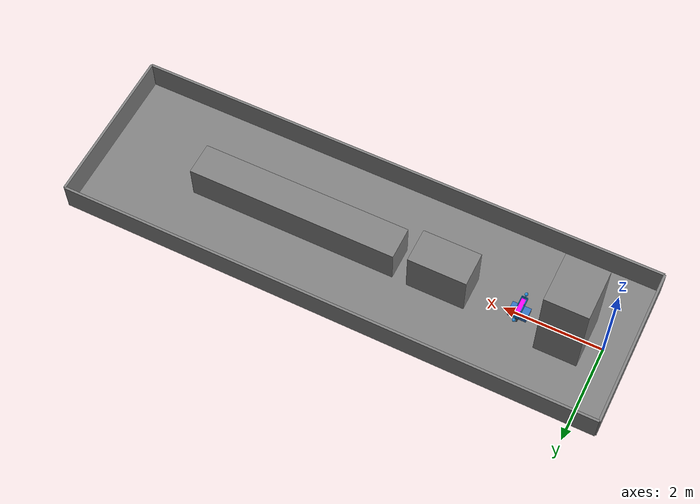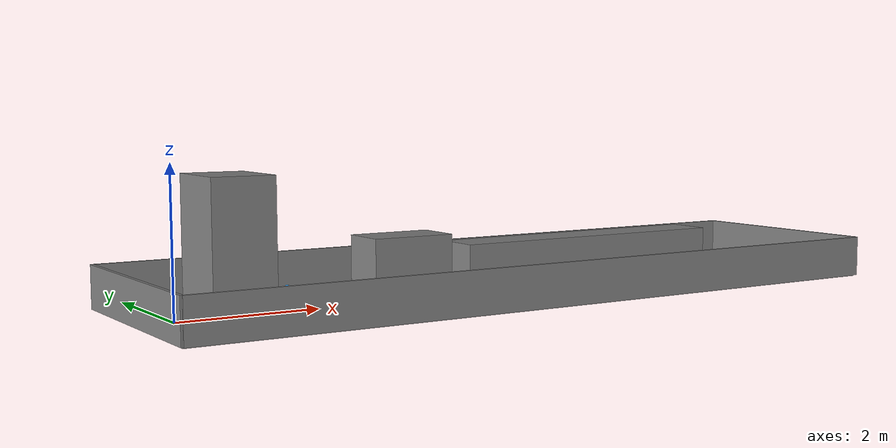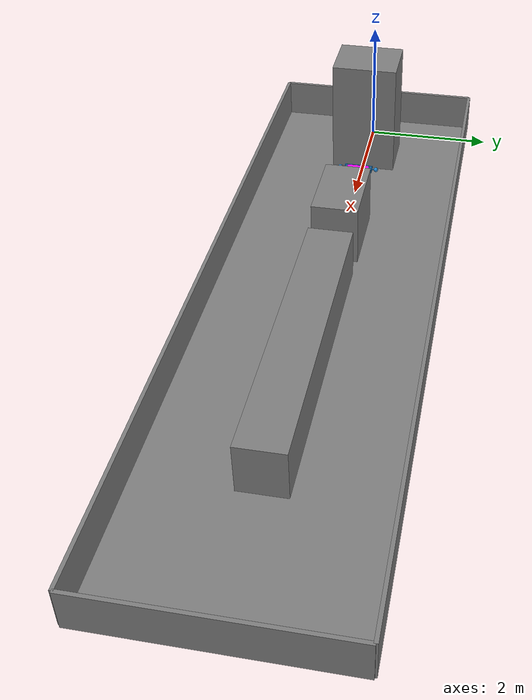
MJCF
<?xml version="1.0" encoding="utf-8"?>
<mujoco model="workcell010_p3_nav">
  <compiler angle="radian" autolimits="true" />
  <option timestep="0.002" gravity="0 0 -9.81" integrator="implicitfast" />
  <default>
    <geom friction="0.9 0.005 0.0001" condim="3" />
  </default>
  <worldbody>
    <geom name="cell_ground" size="5.51925 1.65028 0.1" pos="5.01925 0 0" type="plane" friction="0.25" />
    <geom name="cell_wall_north" size="5.51925 0.025 0.3" pos="5.01925 1.65028 0.3" type="box" />
    <geom name="cell_wall_south" size="5.51925 0.025 0.3" pos="5.01925 -1.65028 0.3" type="box" />
    <geom name="cell_wall_east" size="0.025 1.65028 0.3" pos="10.5385 0 0.3" type="box" />
    <geom name="cell_wall_west" size="0.025 1.65028 0.3" pos="-0.5 0 0.3" type="box" />
    <geom name="nav_obstacle_h" type="box" pos="0.749878 -0.000000 0.852804" size="0.433236 0.521574 0.984746" friction="1.0 0.005 0.0001" />
    <geom name="nav_obstacle_a" type="box" pos="3.265008 0.000000 0.379529" size="0.596269 0.353977 0.543506" friction="1.0 0.005 0.0001" />
    <geom name="nav_obstacle_c" type="box" pos="6.328720 0.000000 0.375991" size="2.167438 0.335000 0.375991" friction="1.0 0.005 0.0001" />
    <body name="base_link" pos="1.685000 0.0 0.040000">
      <joint name="slide_x" type="slide" axis="1 0 0" damping="0.0" />
      <joint name="slide_y" type="slide" axis="0 1 0" damping="0.0" />
      <joint name="slide_z" type="slide" axis="0 0 1" damping="0.0" />
      <joint name="yaw" type="hinge" axis="0 0 1" damping="0.02" armature="0.01" />
      <geom name="chassis" type="box" pos="0 0 0.060" size="0.19 0.13 0.05" mass="6.0" rgba="0.20 0.45 0.75 1" />
      <site name="lidar_site" pos="0.02 0 0.17" size="0.02" rgba="0.95 0.25 0.25 1" />
      <body name="wheel_left" pos="0 0.15 0">
        <joint name="wheel_left_joint" type="hinge" axis="0 1 0" damping="0.02" armature="0.004" />
        <geom name="wheel_left_geom" type="cylinder" size="0.04 0.02" quat="0.70710678 0.70710678 0 0" mass="0.45" friction="1.6 0.01 0.0001" rgba="0.15 0.15 0.18 1" />
      </body>
      <body name="wheel_right" pos="0 -0.15 0">
        <joint name="wheel_right_joint" type="hinge" axis="0 1 0" damping="0.02" armature="0.004" />
        <geom name="wheel_right_geom" type="cylinder" size="0.04 0.02" quat="0.70710678 0.70710678 0 0" mass="0.45" friction="1.6 0.01 0.0001" rgba="0.15 0.15 0.18 1" />
      </body>
      <body name="nav_load" pos="0.0 0.0 0.240000">
        <geom name="tray_floor" type="box" size="0.065 0.230 0.005" pos="0 0 -0.035" mass="0.030" condim="6" friction="1 .005 .001" rgba="0.15 0.55 0.85 1" />
        <geom name="tray_wall_xp" type="box" size="0.004 0.230 0.030" pos="0.061 0 -0.005" mass="0.008" condim="6" friction="1 .005 .001" rgba="0.15 0.55 0.85 1" />
        <geom name="tray_wall_xn" type="box" size="0.004 0.230 0.030" pos="-0.061 0 -0.005" mass="0.008" condim="6" friction="1 .005 .001" rgba="0.15 0.55 0.85 1" />
        <geom name="tray_wall_yp" type="box" size="0.057 0.004 0.030" pos="0 0.226 -0.005" mass="0.008" condim="6" friction="1 .005 .001" rgba="0.15 0.55 0.85 1" />
        <geom name="tray_wall_yn" type="box" size="0.057 0.004 0.030" pos="0 -0.226 -0.005" mass="0.008" condim="6" friction="1 .005 .001" rgba="0.15 0.55 0.85 1" />
        <geom name="tray_divider_1" type="box" size="0.057 0.003 0.024" pos="0 -0.0767 -0.011" mass="0.004" condim="6" friction="1 .005 .001" rgba="0.15 0.55 0.85 1" />
        <geom name="tray_divider_2" type="box" size="0.057 0.003 0.024" pos="0 0.0767 -0.011" mass="0.004" condim="6" friction="1 .005 .001" rgba="0.15 0.55 0.85 1" />
        <geom name="handle_-1" type="sphere" pos="0 -0.3 0" size="0.035" mass="0.012" condim="6" friction="1 .005 .001" rgba="0.15 0.55 0.85 1" />
        <geom name="handle_stem_-1" type="capsule" fromto="0 -0.22 0 0 -0.3 0" size=".009" mass="0.002" rgba="0.15 0.55 0.85 1" />
        <geom name="handle_1" type="sphere" pos="0 0.3 0" size="0.035" mass="0.012" condim="6" friction="1 .005 .001" rgba="0.15 0.55 0.85 1" />
        <geom name="handle_stem_1" type="capsule" fromto="0 0.22 0 0 0.3 0" size=".009" mass="0.002" rgba="0.15 0.55 0.85 1" />
        <geom name="visual_marker" type="box" pos="0 0 0.026" size=".045 .18 .001" rgba="1 .02 1 1" contype="0" conaffinity="0" mass="0" />
      </body>
    </body>
  </worldbody>
  <actuator>
    <motor name="wheel_left_motor" joint="wheel_left_joint" ctrlrange="-8 8" />
    <motor name="wheel_right_motor" joint="wheel_right_joint" ctrlrange="-8 8" />
  </actuator>
</mujoco>
